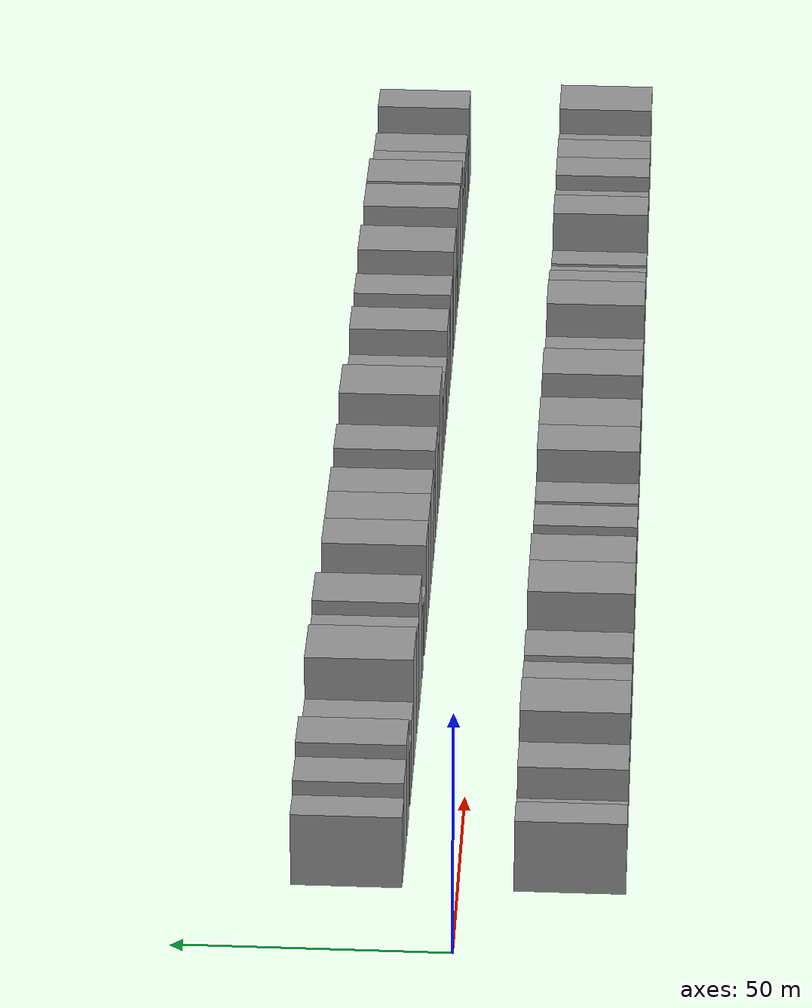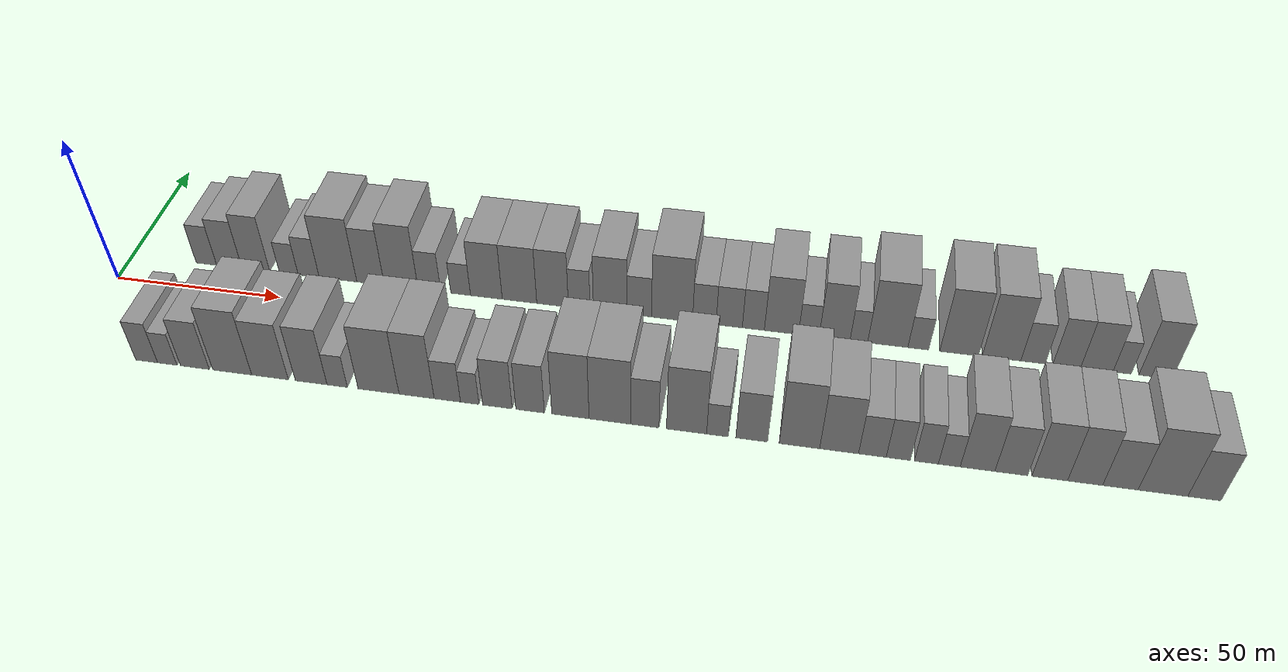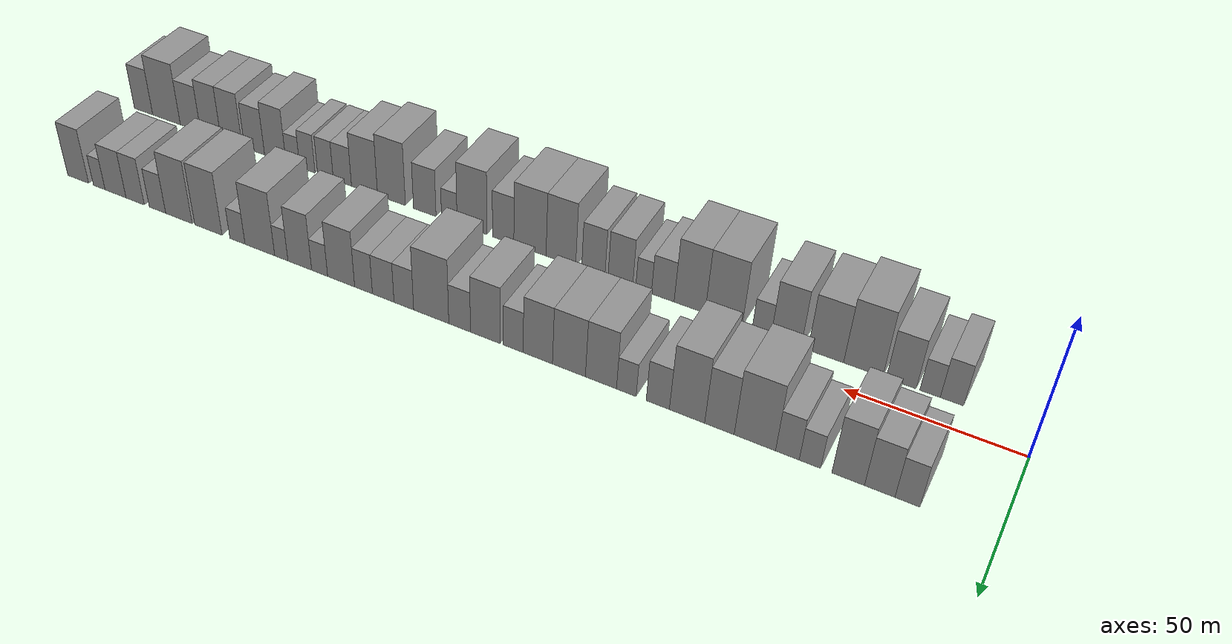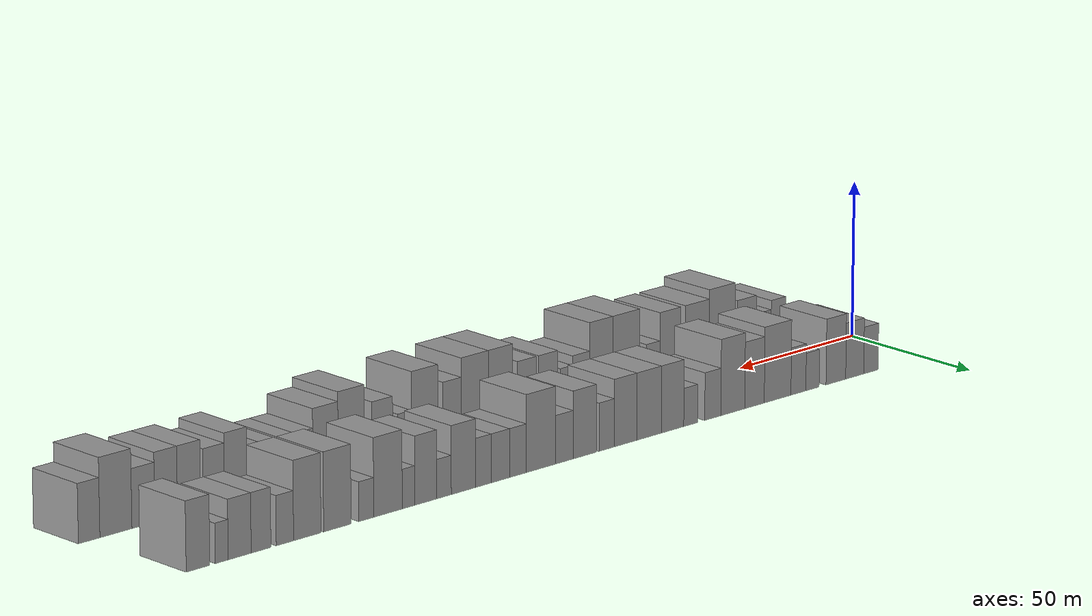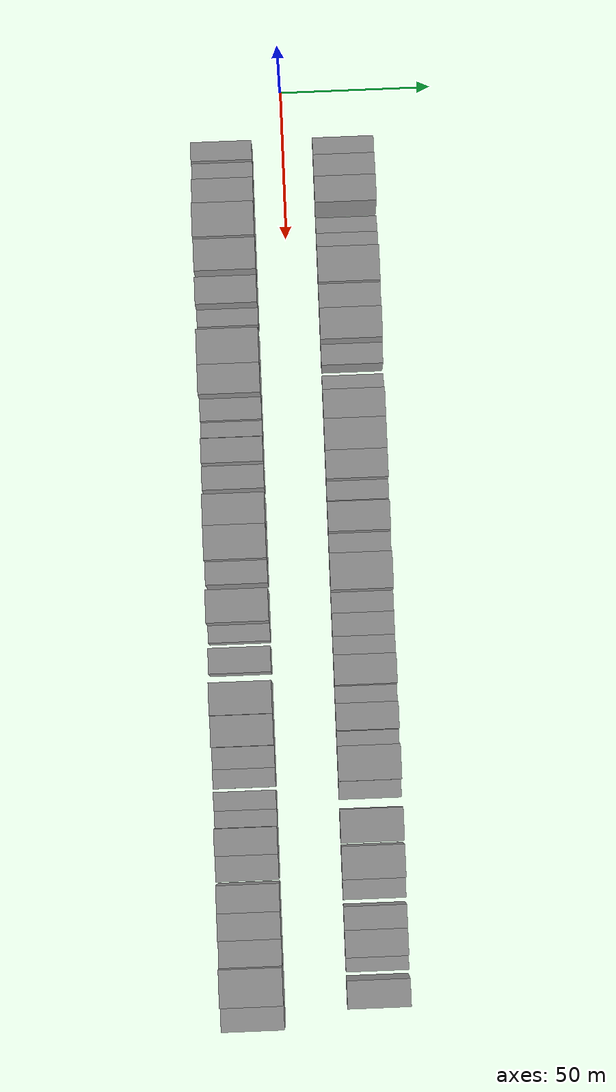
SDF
<sdf version="1.6">
 <world name="default">
  <scene>
   <sky><clouds><speed>12</speed></clouds></sky>
   <ambient>0.4 0.4 0.4 1</ambient>
   <background>0.7 0.7 0.7 1</background>
   <shadows>1</shadows>
  </scene>
  <gravity>0 0 -9.8066</gravity>
  <magnetic_field>6e-06 2.3e-05 -4.2e-05</magnetic_field>
  <physics default="0" name="default_physics" type="ode">
   <ode>
    <solver>
     <type>quick</type>
     <iters>10</iters>
     <sor>1.0</sor>
     <use_dynamic_moi_rescaling>0</use_dynamic_moi_rescaling>
    </solver>
    <constraints>
     <cfm>0</cfm>
     <erp>0.2</erp>
     <contact_max_correcting_vel>100</contact_max_correcting_vel>
     <contact_surface_layer>0.001</contact_surface_layer>
    </constraints>
   </ode>
   <max_step_size>0.004</max_step_size>
   <real_time_factor>1</real_time_factor>
   <real_time_update_rate>250</real_time_update_rate>
  </physics>
  <light name="sun" type="directional">
   <pose>0 0 10 0 0 0</pose>
   <diffuse>0.8 0.8 0.8 1</diffuse>
   <specular>0.2 0.2 0.2 1</specular>
   <attenuation>
    <range>1000</range>
    <constant>0.9</constant>
    <linear>0.01</linear>
    <quadratic>0.001</quadratic>
   </attenuation>
   <direction>-0.5 0.1 -0.9</direction>
  </light>
  <model name="building_1">
   <static>1</static>
   <pose>23.2185 20.0000 0 0.000000 0.000000 1.570796</pose>
   <link name="link">
    <pose>0 0 7.50 0 0 0</pose>
    <collision name="collision"><geometry><box><size>20.0000 6.4370 15.0000</size></box></geometry></collision>
    <visual name="visual">
     <cast_shadows>0</cast_shadows>
     <geometry><box><size>20.0000 6.4370 15.0000</size></box></geometry>
     <material>
      <script>
       <uri>model://grey_wall/materials/scripts</uri>
       <uri>model://grey_wall/materials/textures</uri>
       <name>vrc/grey_wall</name>
      </script>
     </material>
    </visual>
   </link>
  </model>
  <model name="building_2">
   <static>1</static>
   <pose>30.4267 20.0000 0 0.000000 0.000000 1.570796</pose>
   <link name="link">
    <pose>0 0 9.00 0 0 0</pose>
    <collision name="collision"><geometry><box><size>20.0000 7.9793 18.0000</size></box></geometry></collision>
    <visual name="visual">
     <cast_shadows>0</cast_shadows>
     <geometry><box><size>20.0000 7.9793 18.0000</size></box></geometry>
     <material>
      <script>
       <uri>model://grey_wall/materials/scripts</uri>
       <uri>model://grey_wall/materials/textures</uri>
       <name>vrc/grey_wall</name>
      </script>
     </material>
    </visual>
   </link>
  </model>
  <model name="building_3">
   <static>1</static>
   <pose>38.7653 20.0000 0 0.000000 0.000000 1.570796</pose>
   <link name="link">
    <pose>0 0 10.50 0 0 0</pose>
    <collision name="collision"><geometry><box><size>20.0000 8.6980 21.0000</size></box></geometry></collision>
    <visual name="visual">
     <cast_shadows>0</cast_shadows>
     <geometry><box><size>20.0000 8.6980 21.0000</size></box></geometry>
     <material>
      <script>
       <uri>model://grey_wall/materials/scripts</uri>
       <uri>model://grey_wall/materials/textures</uri>
       <name>vrc/grey_wall</name>
      </script>
     </material>
    </visual>
   </link>
  </model>
  <model name="building_4">
   <static>1</static>
   <pose>49.0297 20.0000 0 0.000000 0.000000 1.570796</pose>
   <link name="link">
    <pose>0 0 6.00 0 0 0</pose>
    <collision name="collision"><geometry><box><size>20.0000 5.8307 12.0000</size></box></geometry></collision>
    <visual name="visual">
     <cast_shadows>0</cast_shadows>
     <geometry><box><size>20.0000 5.8307 12.0000</size></box></geometry>
     <material>
      <script>
       <uri>model://grey_wall/materials/scripts</uri>
       <uri>model://grey_wall/materials/textures</uri>
       <name>vrc/grey_wall</name>
      </script>
     </material>
    </visual>
   </link>
  </model>
  <model name="building_5">
   <static>1</static>
   <pose>55.2006 20.0000 0 0.000000 0.000000 1.570796</pose>
   <link name="link">
    <pose>0 0 7.50 0 0 0</pose>
    <collision name="collision"><geometry><box><size>20.0000 6.5111 15.0000</size></box></geometry></collision>
    <visual name="visual">
     <cast_shadows>0</cast_shadows>
     <geometry><box><size>20.0000 6.5111 15.0000</size></box></geometry>
     <material>
      <script>
       <uri>model://grey_wall/materials/scripts</uri>
       <uri>model://grey_wall/materials/textures</uri>
       <name>vrc/grey_wall</name>
      </script>
     </material>
    </visual>
   </link>
  </model>
  <model name="building_6">
   <static>1</static>
   <pose>64.2493 20.0000 0 0.000000 0.000000 1.570796</pose>
   <link name="link">
    <pose>0 0 12.00 0 0 0</pose>
    <collision name="collision"><geometry><box><size>20.0000 11.5862 24.0000</size></box></geometry></collision>
    <visual name="visual">
     <cast_shadows>0</cast_shadows>
     <geometry><box><size>20.0000 11.5862 24.0000</size></box></geometry>
     <material>
      <script>
       <uri>model://grey_wall/materials/scripts</uri>
       <uri>model://grey_wall/materials/textures</uri>
       <name>vrc/grey_wall</name>
      </script>
     </material>
    </visual>
   </link>
  </model>
  <model name="building_7">
   <static>1</static>
   <pose>74.2523 20.0000 0 0.000000 0.000000 1.570796</pose>
   <link name="link">
    <pose>0 0 10.50 0 0 0</pose>
    <collision name="collision"><geometry><box><size>20.0000 8.4197 21.0000</size></box></geometry></collision>
    <visual name="visual">
     <cast_shadows>0</cast_shadows>
     <geometry><box><size>20.0000 8.4197 21.0000</size></box></geometry>
     <material>
      <script>
       <uri>model://grey_wall/materials/scripts</uri>
       <uri>model://grey_wall/materials/textures</uri>
       <name>vrc/grey_wall</name>
      </script>
     </material>
    </visual>
   </link>
  </model>
  <model name="building_8">
   <static>1</static>
   <pose>83.5853 20.0000 0 0.000000 0.000000 1.570796</pose>
   <link name="link">
    <pose>0 0 12.00 0 0 0</pose>
    <collision name="collision"><geometry><box><size>20.0000 10.2463 24.0000</size></box></geometry></collision>
    <visual name="visual">
     <cast_shadows>0</cast_shadows>
     <geometry><box><size>20.0000 10.2463 24.0000</size></box></geometry>
     <material>
      <script>
       <uri>model://grey_wall/materials/scripts</uri>
       <uri>model://grey_wall/materials/textures</uri>
       <name>vrc/grey_wall</name>
      </script>
     </material>
    </visual>
   </link>
  </model>
  <model name="building_9">
   <static>1</static>
   <pose>92.1335 20.0000 0 0.000000 0.000000 1.570796</pose>
   <link name="link">
    <pose>0 0 7.50 0 0 0</pose>
    <collision name="collision"><geometry><box><size>20.0000 6.8501 15.0000</size></box></geometry></collision>
    <visual name="visual">
     <cast_shadows>0</cast_shadows>
     <geometry><box><size>20.0000 6.8501 15.0000</size></box></geometry>
     <material>
      <script>
       <uri>model://grey_wall/materials/scripts</uri>
       <uri>model://grey_wall/materials/textures</uri>
       <name>vrc/grey_wall</name>
      </script>
     </material>
    </visual>
   </link>
  </model>
  <model name="building_10">
   <static>1</static>
   <pose>101.5094 20.0000 0 0.000000 0.000000 1.570796</pose>
   <link name="link">
    <pose>0 0 6.00 0 0 0</pose>
    <collision name="collision"><geometry><box><size>20.0000 5.9017 12.0000</size></box></geometry></collision>
    <visual name="visual">
     <cast_shadows>0</cast_shadows>
     <geometry><box><size>20.0000 5.9017 12.0000</size></box></geometry>
     <material>
      <script>
       <uri>model://grey_wall/materials/scripts</uri>
       <uri>model://grey_wall/materials/textures</uri>
       <name>vrc/grey_wall</name>
      </script>
     </material>
    </visual>
   </link>
  </model>
  <model name="building_11">
   <static>1</static>
   <pose>109.1978 20.0000 0 0.000000 0.000000 1.570796</pose>
   <link name="link">
    <pose>0 0 10.50 0 0 0</pose>
    <collision name="collision"><geometry><box><size>20.0000 9.4750 21.0000</size></box></geometry></collision>
    <visual name="visual">
     <cast_shadows>0</cast_shadows>
     <geometry><box><size>20.0000 9.4750 21.0000</size></box></geometry>
     <material>
      <script>
       <uri>model://grey_wall/materials/scripts</uri>
       <uri>model://grey_wall/materials/textures</uri>
       <name>vrc/grey_wall</name>
      </script>
     </material>
    </visual>
   </link>
  </model>
  <model name="building_12">
   <static>1</static>
   <pose>119.0571 20.0000 0 0.000000 0.000000 1.570796</pose>
   <link name="link">
    <pose>0 0 10.50 0 0 0</pose>
    <collision name="collision"><geometry><box><size>20.0000 10.2438 21.0000</size></box></geometry></collision>
    <visual name="visual">
     <cast_shadows>0</cast_shadows>
     <geometry><box><size>20.0000 10.2438 21.0000</size></box></geometry>
     <material>
      <script>
       <uri>model://grey_wall/materials/scripts</uri>
       <uri>model://grey_wall/materials/textures</uri>
       <name>vrc/grey_wall</name>
      </script>
     </material>
    </visual>
   </link>
  </model>
  <model name="building_13">
   <static>1</static>
   <pose>128.8372 20.0000 0 0.000000 0.000000 1.570796</pose>
   <link name="link">
    <pose>0 0 10.50 0 0 0</pose>
    <collision name="collision"><geometry><box><size>20.0000 9.3164 21.0000</size></box></geometry></collision>
    <visual name="visual">
     <cast_shadows>0</cast_shadows>
     <geometry><box><size>20.0000 9.3164 21.0000</size></box></geometry>
     <material>
      <script>
       <uri>model://grey_wall/materials/scripts</uri>
       <uri>model://grey_wall/materials/textures</uri>
       <name>vrc/grey_wall</name>
      </script>
     </material>
    </visual>
   </link>
  </model>
  <model name="building_14">
   <static>1</static>
   <pose>136.6634 20.0000 0 0.000000 0.000000 1.570796</pose>
   <link name="link">
    <pose>0 0 7.50 0 0 0</pose>
    <collision name="collision"><geometry><box><size>20.0000 6.3360 15.0000</size></box></geometry></collision>
    <visual name="visual">
     <cast_shadows>0</cast_shadows>
     <geometry><box><size>20.0000 6.3360 15.0000</size></box></geometry>
     <material>
      <script>
       <uri>model://grey_wall/materials/scripts</uri>
       <uri>model://grey_wall/materials/textures</uri>
       <name>vrc/grey_wall</name>
      </script>
     </material>
    </visual>
   </link>
  </model>
  <model name="building_15">
   <static>1</static>
   <pose>145.6636 20.0000 0 0.000000 0.000000 1.570796</pose>
   <link name="link">
    <pose>0 0 10.50 0 0 0</pose>
    <collision name="collision"><geometry><box><size>20.0000 9.6642 21.0000</size></box></geometry></collision>
    <visual name="visual">
     <cast_shadows>0</cast_shadows>
     <geometry><box><size>20.0000 9.6642 21.0000</size></box></geometry>
     <material>
      <script>
       <uri>model://grey_wall/materials/scripts</uri>
       <uri>model://grey_wall/materials/textures</uri>
       <name>vrc/grey_wall</name>
      </script>
     </material>
    </visual>
   </link>
  </model>
  <model name="building_16">
   <static>1</static>
   <pose>154.0857 20.0000 0 0.000000 0.000000 1.570796</pose>
   <link name="link">
    <pose>0 0 7.50 0 0 0</pose>
    <collision name="collision"><geometry><box><size>20.0000 7.1800 15.0000</size></box></geometry></collision>
    <visual name="visual">
     <cast_shadows>0</cast_shadows>
     <geometry><box><size>20.0000 7.1800 15.0000</size></box></geometry>
     <material>
      <script>
       <uri>model://grey_wall/materials/scripts</uri>
       <uri>model://grey_wall/materials/textures</uri>
       <name>vrc/grey_wall</name>
      </script>
     </material>
    </visual>
   </link>
  </model>
  <model name="building_17">
   <static>1</static>
   <pose>163.5873 20.0000 0 0.000000 0.000000 1.570796</pose>
   <link name="link">
    <pose>0 0 12.00 0 0 0</pose>
    <collision name="collision"><geometry><box><size>20.0000 11.8232 24.0000</size></box></geometry></collision>
    <visual name="visual">
     <cast_shadows>0</cast_shadows>
     <geometry><box><size>20.0000 11.8232 24.0000</size></box></geometry>
     <material>
      <script>
       <uri>model://grey_wall/materials/scripts</uri>
       <uri>model://grey_wall/materials/textures</uri>
       <name>vrc/grey_wall</name>
      </script>
     </material>
    </visual>
   </link>
  </model>
  <model name="building_18">
   <static>1</static>
   <pose>172.8582 20.0000 0 0.000000 0.000000 1.570796</pose>
   <link name="link">
    <pose>0 0 7.50 0 0 0</pose>
    <collision name="collision"><geometry><box><size>20.0000 6.7187 15.0000</size></box></geometry></collision>
    <visual name="visual">
     <cast_shadows>0</cast_shadows>
     <geometry><box><size>20.0000 6.7187 15.0000</size></box></geometry>
     <material>
      <script>
       <uri>model://grey_wall/materials/scripts</uri>
       <uri>model://grey_wall/materials/textures</uri>
       <name>vrc/grey_wall</name>
      </script>
     </material>
    </visual>
   </link>
  </model>
  <model name="building_19">
   <static>1</static>
   <pose>179.9510 20.0000 0 0.000000 0.000000 1.570796</pose>
   <link name="link">
    <pose>0 0 7.50 0 0 0</pose>
    <collision name="collision"><geometry><box><size>20.0000 7.4668 15.0000</size></box></geometry></collision>
    <visual name="visual">
     <cast_shadows>0</cast_shadows>
     <geometry><box><size>20.0000 7.4668 15.0000</size></box></geometry>
     <material>
      <script>
       <uri>model://grey_wall/materials/scripts</uri>
       <uri>model://grey_wall/materials/textures</uri>
       <name>vrc/grey_wall</name>
      </script>
     </material>
    </visual>
   </link>
  </model>
  <model name="building_20">
   <static>1</static>
   <pose>186.8059 20.0000 0 0.000000 0.000000 1.570796</pose>
   <link name="link">
    <pose>0 0 7.50 0 0 0</pose>
    <collision name="collision"><geometry><box><size>20.0000 6.2430 15.0000</size></box></geometry></collision>
    <visual name="visual">
     <cast_shadows>0</cast_shadows>
     <geometry><box><size>20.0000 6.2430 15.0000</size></box></geometry>
     <material>
      <script>
       <uri>model://grey_wall/materials/scripts</uri>
       <uri>model://grey_wall/materials/textures</uri>
       <name>vrc/grey_wall</name>
      </script>
     </material>
    </visual>
   </link>
  </model>
  <model name="building_21">
   <static>1</static>
   <pose>194.7337 20.0000 0 0.000000 0.000000 1.570796</pose>
   <link name="link">
    <pose>0 0 10.50 0 0 0</pose>
    <collision name="collision"><geometry><box><size>20.0000 9.6127 21.0000</size></box></geometry></collision>
    <visual name="visual">
     <cast_shadows>0</cast_shadows>
     <geometry><box><size>20.0000 9.6127 21.0000</size></box></geometry>
     <material>
      <script>
       <uri>model://grey_wall/materials/scripts</uri>
       <uri>model://grey_wall/materials/textures</uri>
       <name>vrc/grey_wall</name>
      </script>
     </material>
    </visual>
   </link>
  </model>
  <model name="building_22">
   <static>1</static>
   <pose>202.4195 20.0000 0 0.000000 0.000000 1.570796</pose>
   <link name="link">
    <pose>0 0 6.00 0 0 0</pose>
    <collision name="collision"><geometry><box><size>20.0000 5.7590 12.0000</size></box></geometry></collision>
    <visual name="visual">
     <cast_shadows>0</cast_shadows>
     <geometry><box><size>20.0000 5.7590 12.0000</size></box></geometry>
     <material>
      <script>
       <uri>model://grey_wall/materials/scripts</uri>
       <uri>model://grey_wall/materials/textures</uri>
       <name>vrc/grey_wall</name>
      </script>
     </material>
    </visual>
   </link>
  </model>
  <model name="building_23">
   <static>1</static>
   <pose>209.6194 20.0000 0 0.000000 0.000000 1.570796</pose>
   <link name="link">
    <pose>0 0 10.50 0 0 0</pose>
    <collision name="collision"><geometry><box><size>20.0000 8.6408 21.0000</size></box></geometry></collision>
    <visual name="visual">
     <cast_shadows>0</cast_shadows>
     <geometry><box><size>20.0000 8.6408 21.0000</size></box></geometry>
     <material>
      <script>
       <uri>model://grey_wall/materials/scripts</uri>
       <uri>model://grey_wall/materials/textures</uri>
       <name>vrc/grey_wall</name>
      </script>
     </material>
    </visual>
   </link>
  </model>
  <model name="building_24">
   <static>1</static>
   <pose>216.3838 20.0000 0 0.000000 0.000000 1.570796</pose>
   <link name="link">
    <pose>0 0 6.00 0 0 0</pose>
    <collision name="collision"><geometry><box><size>20.0000 4.8879 12.0000</size></box></geometry></collision>
    <visual name="visual">
     <cast_shadows>0</cast_shadows>
     <geometry><box><size>20.0000 4.8879 12.0000</size></box></geometry>
     <material>
      <script>
       <uri>model://grey_wall/materials/scripts</uri>
       <uri>model://grey_wall/materials/textures</uri>
       <name>vrc/grey_wall</name>
      </script>
     </material>
    </visual>
   </link>
  </model>
  <model name="building_25">
   <static>1</static>
   <pose>224.3816 20.0000 0 0.000000 0.000000 1.570796</pose>
   <link name="link">
    <pose>0 0 12.00 0 0 0</pose>
    <collision name="collision"><geometry><box><size>20.0000 11.1077 24.0000</size></box></geometry></collision>
    <visual name="visual">
     <cast_shadows>0</cast_shadows>
     <geometry><box><size>20.0000 11.1077 24.0000</size></box></geometry>
     <material>
      <script>
       <uri>model://grey_wall/materials/scripts</uri>
       <uri>model://grey_wall/materials/textures</uri>
       <name>vrc/grey_wall</name>
      </script>
     </material>
    </visual>
   </link>
  </model>
  <model name="building_26">
   <static>1</static>
   <pose>232.8020 20.0000 0 0.000000 0.000000 1.570796</pose>
   <link name="link">
    <pose>0 0 6.00 0 0 0</pose>
    <collision name="collision"><geometry><box><size>20.0000 5.7331 12.0000</size></box></geometry></collision>
    <visual name="visual">
     <cast_shadows>0</cast_shadows>
     <geometry><box><size>20.0000 5.7331 12.0000</size></box></geometry>
     <material>
      <script>
       <uri>model://grey_wall/materials/scripts</uri>
       <uri>model://grey_wall/materials/textures</uri>
       <name>vrc/grey_wall</name>
      </script>
     </material>
    </visual>
   </link>
  </model>
  <model name="building_27">
   <static>1</static>
   <pose>243.9484 20.0000 0 0.000000 0.000000 1.570796</pose>
   <link name="link">
    <pose>0 0 12.00 0 0 0</pose>
    <collision name="collision"><geometry><box><size>20.0000 10.5597 24.0000</size></box></geometry></collision>
    <visual name="visual">
     <cast_shadows>0</cast_shadows>
     <geometry><box><size>20.0000 10.5597 24.0000</size></box></geometry>
     <material>
      <script>
       <uri>model://grey_wall/materials/scripts</uri>
       <uri>model://grey_wall/materials/textures</uri>
       <name>vrc/grey_wall</name>
      </script>
     </material>
    </visual>
   </link>
  </model>
  <model name="building_28">
   <static>1</static>
   <pose>255.4477 20.0000 0 0.000000 0.000000 1.570796</pose>
   <link name="link">
    <pose>0 0 12.00 0 0 0</pose>
    <collision name="collision"><geometry><box><size>20.0000 10.4390 24.0000</size></box></geometry></collision>
    <visual name="visual">
     <cast_shadows>0</cast_shadows>
     <geometry><box><size>20.0000 10.4390 24.0000</size></box></geometry>
     <material>
      <script>
       <uri>model://grey_wall/materials/scripts</uri>
       <uri>model://grey_wall/materials/textures</uri>
       <name>vrc/grey_wall</name>
      </script>
     </material>
    </visual>
   </link>
  </model>
  <model name="building_29">
   <static>1</static>
   <pose>263.9485 20.0000 0 0.000000 0.000000 1.570796</pose>
   <link name="link">
    <pose>0 0 7.50 0 0 0</pose>
    <collision name="collision"><geometry><box><size>20.0000 6.5625 15.0000</size></box></geometry></collision>
    <visual name="visual">
     <cast_shadows>0</cast_shadows>
     <geometry><box><size>20.0000 6.5625 15.0000</size></box></geometry>
     <material>
      <script>
       <uri>model://grey_wall/materials/scripts</uri>
       <uri>model://grey_wall/materials/textures</uri>
       <name>vrc/grey_wall</name>
      </script>
     </material>
    </visual>
   </link>
  </model>
  <model name="building_30">
   <static>1</static>
   <pose>272.9415 20.0000 0 0.000000 0.000000 1.570796</pose>
   <link name="link">
    <pose>0 0 9.00 0 0 0</pose>
    <collision name="collision"><geometry><box><size>20.0000 7.4235 18.0000</size></box></geometry></collision>
    <visual name="visual">
     <cast_shadows>0</cast_shadows>
     <geometry><box><size>20.0000 7.4235 18.0000</size></box></geometry>
     <material>
      <script>
       <uri>model://grey_wall/materials/scripts</uri>
       <uri>model://grey_wall/materials/textures</uri>
       <name>vrc/grey_wall</name>
      </script>
     </material>
    </visual>
   </link>
  </model>
  <model name="building_31">
   <static>1</static>
   <pose>280.9500 20.0000 0 0.000000 0.000000 1.570796</pose>
   <link name="link">
    <pose>0 0 9.00 0 0 0</pose>
    <collision name="collision"><geometry><box><size>20.0000 8.5936 18.0000</size></box></geometry></collision>
    <visual name="visual">
     <cast_shadows>0</cast_shadows>
     <geometry><box><size>20.0000 8.5936 18.0000</size></box></geometry>
     <material>
      <script>
       <uri>model://grey_wall/materials/scripts</uri>
       <uri>model://grey_wall/materials/textures</uri>
       <name>vrc/grey_wall</name>
      </script>
     </material>
    </visual>
   </link>
  </model>
  <model name="building_32">
   <static>1</static>
   <pose>287.6605 20.0000 0 0.000000 0.000000 1.570796</pose>
   <link name="link">
    <pose>0 0 6.00 0 0 0</pose>
    <collision name="collision"><geometry><box><size>20.0000 4.8273 12.0000</size></box></geometry></collision>
    <visual name="visual">
     <cast_shadows>0</cast_shadows>
     <geometry><box><size>20.0000 4.8273 12.0000</size></box></geometry>
     <material>
      <script>
       <uri>model://grey_wall/materials/scripts</uri>
       <uri>model://grey_wall/materials/textures</uri>
       <name>vrc/grey_wall</name>
      </script>
     </material>
    </visual>
   </link>
  </model>
  <model name="building_33">
   <static>1</static>
   <pose>296.4525 20.0000 0 0.000000 0.000000 1.570796</pose>
   <link name="link">
    <pose>0 0 10.50 0 0 0</pose>
    <collision name="collision"><geometry><box><size>20.0000 8.7567 21.0000</size></box></geometry></collision>
    <visual name="visual">
     <cast_shadows>0</cast_shadows>
     <geometry><box><size>20.0000 8.7567 21.0000</size></box></geometry>
     <material>
      <script>
       <uri>model://grey_wall/materials/scripts</uri>
       <uri>model://grey_wall/materials/textures</uri>
       <name>vrc/grey_wall</name>
      </script>
     </material>
    </visual>
   </link>
  </model>
  <model name="building_34">
   <static>1</static>
   <pose>23.1970 -20.0000 0 0.000000 0.000000 1.570796</pose>
   <link name="link">
    <pose>0 0 7.50 0 0 0</pose>
    <collision name="collision"><geometry><box><size>20.0000 6.3940 15.0000</size></box></geometry></collision>
    <visual name="visual">
     <cast_shadows>0</cast_shadows>
     <geometry><box><size>20.0000 6.3940 15.0000</size></box></geometry>
     <material>
      <script>
       <uri>model://grey_wall/materials/scripts</uri>
       <uri>model://grey_wall/materials/textures</uri>
       <name>vrc/grey_wall</name>
      </script>
     </material>
    </visual>
   </link>
  </model>
  <model name="building_35">
   <static>1</static>
   <pose>29.2243 -20.0000 0 0.000000 0.000000 1.570796</pose>
   <link name="link">
    <pose>0 0 6.00 0 0 0</pose>
    <collision name="collision"><geometry><box><size>20.0000 5.6607 12.0000</size></box></geometry></collision>
    <visual name="visual">
     <cast_shadows>0</cast_shadows>
     <geometry><box><size>20.0000 5.6607 12.0000</size></box></geometry>
     <material>
      <script>
       <uri>model://grey_wall/materials/scripts</uri>
       <uri>model://grey_wall/materials/textures</uri>
       <name>vrc/grey_wall</name>
      </script>
     </material>
    </visual>
   </link>
  </model>
  <model name="building_36">
   <static>1</static>
   <pose>37.2534 -20.0000 0 0.000000 0.000000 1.570796</pose>
   <link name="link">
    <pose>0 0 9.00 0 0 0</pose>
    <collision name="collision"><geometry><box><size>20.0000 8.3975 18.0000</size></box></geometry></collision>
    <visual name="visual">
     <cast_shadows>0</cast_shadows>
     <geometry><box><size>20.0000 8.3975 18.0000</size></box></geometry>
     <material>
      <script>
       <uri>model://grey_wall/materials/scripts</uri>
       <uri>model://grey_wall/materials/textures</uri>
       <name>vrc/grey_wall</name>
      </script>
     </material>
    </visual>
   </link>
  </model>
  <model name="building_37">
   <static>1</static>
   <pose>48.0636 -20.0000 0 0.000000 0.000000 1.570796</pose>
   <link name="link">
    <pose>0 0 12.00 0 0 0</pose>
    <collision name="collision"><geometry><box><size>20.0000 11.2227 24.0000</size></box></geometry></collision>
    <visual name="visual">
     <cast_shadows>0</cast_shadows>
     <geometry><box><size>20.0000 11.2227 24.0000</size></box></geometry>
     <material>
      <script>
       <uri>model://grey_wall/materials/scripts</uri>
       <uri>model://grey_wall/materials/textures</uri>
       <name>vrc/grey_wall</name>
      </script>
     </material>
    </visual>
   </link>
  </model>
  <model name="building_38">
   <static>1</static>
   <pose>58.8987 -20.0000 0 0.000000 0.000000 1.570796</pose>
   <link name="link">
    <pose>0 0 10.50 0 0 0</pose>
    <collision name="collision"><geometry><box><size>20.0000 10.4476 21.0000</size></box></geometry></collision>
    <visual name="visual">
     <cast_shadows>0</cast_shadows>
     <geometry><box><size>20.0000 10.4476 21.0000</size></box></geometry>
     <material>
      <script>
       <uri>model://grey_wall/materials/scripts</uri>
       <uri>model://grey_wall/materials/textures</uri>
       <name>vrc/grey_wall</name>
      </script>
     </material>
    </visual>
   </link>
  </model>
  <model name="building_39">
   <static>1</static>
   <pose>70.6127 -20.0000 0 0.000000 0.000000 1.570796</pose>
   <link name="link">
    <pose>0 0 10.50 0 0 0</pose>
    <collision name="collision"><geometry><box><size>20.0000 8.9804 21.0000</size></box></geometry></collision>
    <visual name="visual">
     <cast_shadows>0</cast_shadows>
     <geometry><box><size>20.0000 8.9804 21.0000</size></box></geometry>
     <material>
      <script>
       <uri>model://grey_wall/materials/scripts</uri>
       <uri>model://grey_wall/materials/textures</uri>
       <name>vrc/grey_wall</name>
      </script>
     </material>
    </visual>
   </link>
  </model>
  <model name="building_40">
   <static>1</static>
   <pose>77.9774 -20.0000 0 0.000000 0.000000 1.570796</pose>
   <link name="link">
    <pose>0 0 6.00 0 0 0</pose>
    <collision name="collision"><geometry><box><size>20.0000 5.7489 12.0000</size></box></geometry></collision>
    <visual name="visual">
     <cast_shadows>0</cast_shadows>
     <geometry><box><size>20.0000 5.7489 12.0000</size></box></geometry>
     <material>
      <script>
       <uri>model://grey_wall/materials/scripts</uri>
       <uri>model://grey_wall/materials/textures</uri>
       <name>vrc/grey_wall</name>
      </script>
     </material>
    </visual>
   </link>
  </model>
  <model name="building_41">
   <static>1</static>
   <pose>89.5844 -20.0000 0 0.000000 0.000000 1.570796</pose>
   <link name="link">
    <pose>0 0 12.00 0 0 0</pose>
    <collision name="collision"><geometry><box><size>20.0000 11.4650 24.0000</size></box></geometry></collision>
    <visual name="visual">
     <cast_shadows>0</cast_shadows>
     <geometry><box><size>20.0000 11.4650 24.0000</size></box></geometry>
     <material>
      <script>
       <uri>model://grey_wall/materials/scripts</uri>
       <uri>model://grey_wall/materials/textures</uri>
       <name>vrc/grey_wall</name>
      </script>
     </material>
    </visual>
   </link>
  </model>
  <model name="building_42">
   <static>1</static>
   <pose>100.1907 -20.0000 0 0.000000 0.000000 1.570796</pose>
   <link name="link">
    <pose>0 0 12.00 0 0 0</pose>
    <collision name="collision"><geometry><box><size>20.0000 9.7477 24.0000</size></box></geometry></collision>
    <visual name="visual">
     <cast_shadows>0</cast_shadows>
     <geometry><box><size>20.0000 9.7477 24.0000</size></box></geometry>
     <material>
      <script>
       <uri>model://grey_wall/materials/scripts</uri>
       <uri>model://grey_wall/materials/textures</uri>
       <name>vrc/grey_wall</name>
      </script>
     </material>
    </visual>
   </link>
  </model>
  <model name="building_43">
   <static>1</static>
   <pose>108.6992 -20.0000 0 0.000000 0.000000 1.570796</pose>
   <link name="link">
    <pose>0 0 7.50 0 0 0</pose>
    <collision name="collision"><geometry><box><size>20.0000 7.2692 15.0000</size></box></geometry></collision>
    <visual name="visual">
     <cast_shadows>0</cast_shadows>
     <geometry><box><size>20.0000 7.2692 15.0000</size></box></geometry>
     <material>
      <script>
       <uri>model://grey_wall/materials/scripts</uri>
       <uri>model://grey_wall/materials/textures</uri>
       <name>vrc/grey_wall</name>
      </script>
     </material>
    </visual>
   </link>
  </model>
  <model name="building_44">
   <static>1</static>
   <pose>114.8678 -20.0000 0 0.000000 0.000000 1.570796</pose>
   <link name="link">
    <pose>0 0 6.00 0 0 0</pose>
    <collision name="collision"><geometry><box><size>20.0000 5.0680 12.0000</size></box></geometry></collision>
    <visual name="visual">
     <cast_shadows>0</cast_shadows>
     <geometry><box><size>20.0000 5.0680 12.0000</size></box></geometry>
     <material>
      <script>
       <uri>model://grey_wall/materials/scripts</uri>
       <uri>model://grey_wall/materials/textures</uri>
       <name>vrc/grey_wall</name>
      </script>
     </material>
    </visual>
   </link>
  </model>
  <model name="building_45">
   <static>1</static>
   <pose>122.4396 -20.0000 0 0.000000 0.000000 1.570796</pose>
   <link name="link">
    <pose>0 0 9.00 0 0 0</pose>
    <collision name="collision"><geometry><box><size>20.0000 8.0756 18.0000</size></box></geometry></collision>
    <visual name="visual">
     <cast_shadows>0</cast_shadows>
     <geometry><box><size>20.0000 8.0756 18.0000</size></box></geometry>
     <material>
      <script>
       <uri>model://grey_wall/materials/scripts</uri>
       <uri>model://grey_wall/materials/textures</uri>
       <name>vrc/grey_wall</name>
      </script>
     </material>
    </visual>
   </link>
  </model>
  <model name="building_46">
   <static>1</static>
   <pose>131.3412 -20.0000 0 0.000000 0.000000 1.570796</pose>
   <link name="link">
    <pose>0 0 9.00 0 0 0</pose>
    <collision name="collision"><geometry><box><size>20.0000 7.7277 18.0000</size></box></geometry></collision>
    <visual name="visual">
     <cast_shadows>0</cast_shadows>
     <geometry><box><size>20.0000 7.7277 18.0000</size></box></geometry>
     <material>
      <script>
       <uri>model://grey_wall/materials/scripts</uri>
       <uri>model://grey_wall/materials/textures</uri>
       <name>vrc/grey_wall</name>
      </script>
     </material>
    </visual>
   </link>
  </model>
  <model name="building_47">
   <static>1</static>
   <pose>142.2214 -20.0000 0 0.000000 0.000000 1.570796</pose>
   <link name="link">
    <pose>0 0 12.00 0 0 0</pose>
    <collision name="collision"><geometry><box><size>20.0000 10.0326 24.0000</size></box></geometry></collision>
    <visual name="visual">
     <cast_shadows>0</cast_shadows>
     <geometry><box><size>20.0000 10.0326 24.0000</size></box></geometry>
     <material>
      <script>
       <uri>model://grey_wall/materials/scripts</uri>
       <uri>model://grey_wall/materials/textures</uri>
       <name>vrc/grey_wall</name>
      </script>
     </material>
    </visual>
   </link>
  </model>
  <model name="building_48">
   <static>1</static>
   <pose>152.7955 -20.0000 0 0.000000 0.000000 1.570796</pose>
   <link name="link">
    <pose>0 0 12.00 0 0 0</pose>
    <collision name="collision"><geometry><box><size>20.0000 11.1156 24.0000</size></box></geometry></collision>
    <visual name="visual">
     <cast_shadows>0</cast_shadows>
     <geometry><box><size>20.0000 11.1156 24.0000</size></box></geometry>
     <material>
      <script>
       <uri>model://grey_wall/materials/scripts</uri>
       <uri>model://grey_wall/materials/textures</uri>
       <name>vrc/grey_wall</name>
      </script>
     </material>
    </visual>
   </link>
  </model>
  <model name="building_49">
   <static>1</static>
   <pose>162.0936 -20.0000 0 0.000000 0.000000 1.570796</pose>
   <link name="link">
    <pose>0 0 9.00 0 0 0</pose>
    <collision name="collision"><geometry><box><size>20.0000 7.4808 18.0000</size></box></geometry></collision>
    <visual name="visual">
     <cast_shadows>0</cast_shadows>
     <geometry><box><size>20.0000 7.4808 18.0000</size></box></geometry>
     <material>
      <script>
       <uri>model://grey_wall/materials/scripts</uri>
       <uri>model://grey_wall/materials/textures</uri>
       <name>vrc/grey_wall</name>
      </script>
     </material>
    </visual>
   </link>
  </model>
  <model name="building_50">
   <static>1</static>
   <pose>173.1123 -20.0000 0 0.000000 0.000000 1.570796</pose>
   <link name="link">
    <pose>0 0 12.00 0 0 0</pose>
    <collision name="collision"><geometry><box><size>20.0000 10.5565 24.0000</size></box></geometry></collision>
    <visual name="visual">
     <cast_shadows>0</cast_shadows>
     <geometry><box><size>20.0000 10.5565 24.0000</size></box></geometry>
     <material>
      <script>
       <uri>model://grey_wall/materials/scripts</uri>
       <uri>model://grey_wall/materials/textures</uri>
       <name>vrc/grey_wall</name>
      </script>
     </material>
    </visual>
   </link>
  </model>
  <model name="building_51">
   <static>1</static>
   <pose>181.2041 -20.0000 0 0.000000 0.000000 1.570796</pose>
   <link name="link">
    <pose>0 0 6.00 0 0 0</pose>
    <collision name="collision"><geometry><box><size>20.0000 5.6272 12.0000</size></box></geometry></collision>
    <visual name="visual">
     <cast_shadows>0</cast_shadows>
     <geometry><box><size>20.0000 5.6272 12.0000</size></box></geometry>
     <material>
      <script>
       <uri>model://grey_wall/materials/scripts</uri>
       <uri>model://grey_wall/materials/textures</uri>
       <name>vrc/grey_wall</name>
      </script>
     </material>
    </visual>
   </link>
  </model>
  <model name="building_52">
   <static>1</static>
   <pose>190.1414 -20.0000 0 0.000000 0.000000 1.570796</pose>
   <link name="link">
    <pose>0 0 9.00 0 0 0</pose>
    <collision name="collision"><geometry><box><size>20.0000 8.2473 18.0000</size></box></geometry></collision>
    <visual name="visual">
     <cast_shadows>0</cast_shadows>
     <geometry><box><size>20.0000 8.2473 18.0000</size></box></geometry>
     <material>
      <script>
       <uri>model://grey_wall/materials/scripts</uri>
       <uri>model://grey_wall/materials/textures</uri>
       <name>vrc/grey_wall</name>
      </script>
     </material>
    </visual>
   </link>
  </model>
  <model name="building_53">
   <static>1</static>
   <pose>202.4718 -20.0000 0 0.000000 0.000000 1.570796</pose>
   <link name="link">
    <pose>0 0 12.00 0 0 0</pose>
    <collision name="collision"><geometry><box><size>20.0000 10.4137 24.0000</size></box></geometry></collision>
    <visual name="visual">
     <cast_shadows>0</cast_shadows>
     <geometry><box><size>20.0000 10.4137 24.0000</size></box></geometry>
     <material>
      <script>
       <uri>model://grey_wall/materials/scripts</uri>
       <uri>model://grey_wall/materials/textures</uri>
       <name>vrc/grey_wall</name>
      </script>
     </material>
    </visual>
   </link>
  </model>
  <model name="building_54">
   <static>1</static>
   <pose>212.6439 -20.0000 0 0.000000 0.000000 1.570796</pose>
   <link name="link">
    <pose>0 0 10.50 0 0 0</pose>
    <collision name="collision"><geometry><box><size>20.0000 9.9305 21.0000</size></box></geometry></collision>
    <visual name="visual">
     <cast_shadows>0</cast_shadows>
     <geometry><box><size>20.0000 9.9305 21.0000</size></box></geometry>
     <material>
      <script>
       <uri>model://grey_wall/materials/scripts</uri>
       <uri>model://grey_wall/materials/textures</uri>
       <name>vrc/grey_wall</name>
      </script>
     </material>
    </visual>
   </link>
  </model>
  <model name="building_55">
   <static>1</static>
   <pose>221.1147 -20.0000 0 0.000000 0.000000 1.570796</pose>
   <link name="link">
    <pose>0 0 7.50 0 0 0</pose>
    <collision name="collision"><geometry><box><size>20.0000 7.0110 15.0000</size></box></geometry></collision>
    <visual name="visual">
     <cast_shadows>0</cast_shadows>
     <geometry><box><size>20.0000 7.0110 15.0000</size></box></geometry>
     <material>
      <script>
       <uri>model://grey_wall/materials/scripts</uri>
       <uri>model://grey_wall/materials/textures</uri>
       <name>vrc/grey_wall</name>
      </script>
     </material>
    </visual>
   </link>
  </model>
  <model name="building_56">
   <static>1</static>
   <pose>227.6785 -20.0000 0 0.000000 0.000000 1.570796</pose>
   <link name="link">
    <pose>0 0 7.50 0 0 0</pose>
    <collision name="collision"><geometry><box><size>20.0000 6.1165 15.0000</size></box></geometry></collision>
    <visual name="visual">
     <cast_shadows>0</cast_shadows>
     <geometry><box><size>20.0000 6.1165 15.0000</size></box></geometry>
     <material>
      <script>
       <uri>model://grey_wall/materials/scripts</uri>
       <uri>model://grey_wall/materials/textures</uri>
       <name>vrc/grey_wall</name>
      </script>
     </material>
    </visual>
   </link>
  </model>
  <model name="building_57">
   <static>1</static>
   <pose>234.7398 -20.0000 0 0.000000 0.000000 1.570796</pose>
   <link name="link">
    <pose>0 0 7.50 0 0 0</pose>
    <collision name="collision"><geometry><box><size>20.0000 6.0059 15.0000</size></box></geometry></collision>
    <visual name="visual">
     <cast_shadows>0</cast_shadows>
     <geometry><box><size>20.0000 6.0059 15.0000</size></box></geometry>
     <material>
      <script>
       <uri>model://grey_wall/materials/scripts</uri>
       <uri>model://grey_wall/materials/textures</uri>
       <name>vrc/grey_wall</name>
      </script>
     </material>
    </visual>
   </link>
  </model>
  <model name="building_58">
   <static>1</static>
   <pose>240.4771 -20.0000 0 0.000000 0.000000 1.570796</pose>
   <link name="link">
    <pose>0 0 6.00 0 0 0</pose>
    <collision name="collision"><geometry><box><size>20.0000 5.4688 12.0000</size></box></geometry></collision>
    <visual name="visual">
     <cast_shadows>0</cast_shadows>
     <geometry><box><size>20.0000 5.4688 12.0000</size></box></geometry>
     <material>
      <script>
       <uri>model://grey_wall/materials/scripts</uri>
       <uri>model://grey_wall/materials/textures</uri>
       <name>vrc/grey_wall</name>
      </script>
     </material>
    </visual>
   </link>
  </model>
  <model name="building_59">
   <static>1</static>
   <pose>247.5259 -20.0000 0 0.000000 0.000000 1.570796</pose>
   <link name="link">
    <pose>0 0 10.50 0 0 0</pose>
    <collision name="collision"><geometry><box><size>20.0000 8.6287 21.0000</size></box></geometry></collision>
    <visual name="visual">
     <cast_shadows>0</cast_shadows>
     <geometry><box><size>20.0000 8.6287 21.0000</size></box></geometry>
     <material>
      <script>
       <uri>model://grey_wall/materials/scripts</uri>
       <uri>model://grey_wall/materials/textures</uri>
       <name>vrc/grey_wall</name>
      </script>
     </material>
    </visual>
   </link>
  </model>
  <model name="building_60">
   <static>1</static>
   <pose>255.9013 -20.0000 0 0.000000 0.000000 1.570796</pose>
   <link name="link">
    <pose>0 0 9.00 0 0 0</pose>
    <collision name="collision"><geometry><box><size>20.0000 8.1222 18.0000</size></box></geometry></collision>
    <visual name="visual">
     <cast_shadows>0</cast_shadows>
     <geometry><box><size>20.0000 8.1222 18.0000</size></box></geometry>
     <material>
      <script>
       <uri>model://grey_wall/materials/scripts</uri>
       <uri>model://grey_wall/materials/textures</uri>
       <name>vrc/grey_wall</name>
      </script>
     </material>
    </visual>
   </link>
  </model>
  <model name="building_61">
   <static>1</static>
   <pose>265.3456 -20.0000 0 0.000000 0.000000 1.570796</pose>
   <link name="link">
    <pose>0 0 10.50 0 0 0</pose>
    <collision name="collision"><geometry><box><size>20.0000 8.7663 21.0000</size></box></geometry></collision>
    <visual name="visual">
     <cast_shadows>0</cast_shadows>
     <geometry><box><size>20.0000 8.7663 21.0000</size></box></geometry>
     <material>
      <script>
       <uri>model://grey_wall/materials/scripts</uri>
       <uri>model://grey_wall/materials/textures</uri>
       <name>vrc/grey_wall</name>
      </script>
     </material>
    </visual>
   </link>
  </model>
  <model name="building_62">
   <static>1</static>
   <pose>274.0069 -20.0000 0 0.000000 0.000000 1.570796</pose>
   <link name="link">
    <pose>0 0 10.50 0 0 0</pose>
    <collision name="collision"><geometry><box><size>20.0000 8.5563 21.0000</size></box></geometry></collision>
    <visual name="visual">
     <cast_shadows>0</cast_shadows>
     <geometry><box><size>20.0000 8.5563 21.0000</size></box></geometry>
     <material>
      <script>
       <uri>model://grey_wall/materials/scripts</uri>
       <uri>model://grey_wall/materials/textures</uri>
       <name>vrc/grey_wall</name>
      </script>
     </material>
    </visual>
   </link>
  </model>
  <model name="building_63">
   <static>1</static>
   <pose>282.5811 -20.0000 0 0.000000 0.000000 1.570796</pose>
   <link name="link">
    <pose>0 0 9.00 0 0 0</pose>
    <collision name="collision"><geometry><box><size>20.0000 8.5922 18.0000</size></box></geometry></collision>
    <visual name="visual">
     <cast_shadows>0</cast_shadows>
     <geometry><box><size>20.0000 8.5922 18.0000</size></box></geometry>
     <material>
      <script>
       <uri>model://grey_wall/materials/scripts</uri>
       <uri>model://grey_wall/materials/textures</uri>
       <name>vrc/grey_wall</name>
      </script>
     </material>
    </visual>
   </link>
  </model>
  <model name="building_64">
   <static>1</static>
   <pose>292.8363 -20.0000 0 0.000000 0.000000 1.570796</pose>
   <link name="link">
    <pose>0 0 12.00 0 0 0</pose>
    <collision name="collision"><geometry><box><size>20.0000 11.9181 24.0000</size></box></geometry></collision>
    <visual name="visual">
     <cast_shadows>0</cast_shadows>
     <geometry><box><size>20.0000 11.9181 24.0000</size></box></geometry>
     <material>
      <script>
       <uri>model://grey_wall/materials/scripts</uri>
       <uri>model://grey_wall/materials/textures</uri>
       <name>vrc/grey_wall</name>
      </script>
     </material>
    </visual>
   </link>
  </model>
  <model name="building_65">
   <static>1</static>
   <pose>302.7692 -20.0000 0 0.000000 0.000000 1.570796</pose>
   <link name="link">
    <pose>0 0 9.00 0 0 0</pose>
    <collision name="collision"><geometry><box><size>20.0000 7.9476 18.0000</size></box></geometry></collision>
    <visual name="visual">
     <cast_shadows>0</cast_shadows>
     <geometry><box><size>20.0000 7.9476 18.0000</size></box></geometry>
     <material>
      <script>
       <uri>model://grey_wall/materials/scripts</uri>
       <uri>model://grey_wall/materials/textures</uri>
       <name>vrc/grey_wall</name>
      </script>
     </material>
    </visual>
   </link>
  </model>
 </world>
</sdf>
